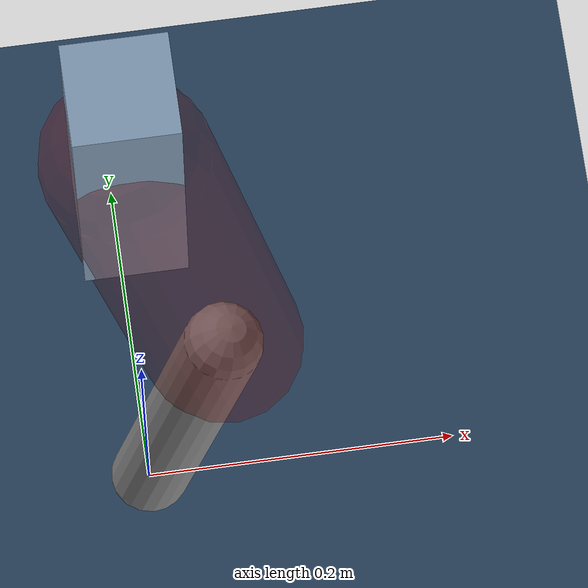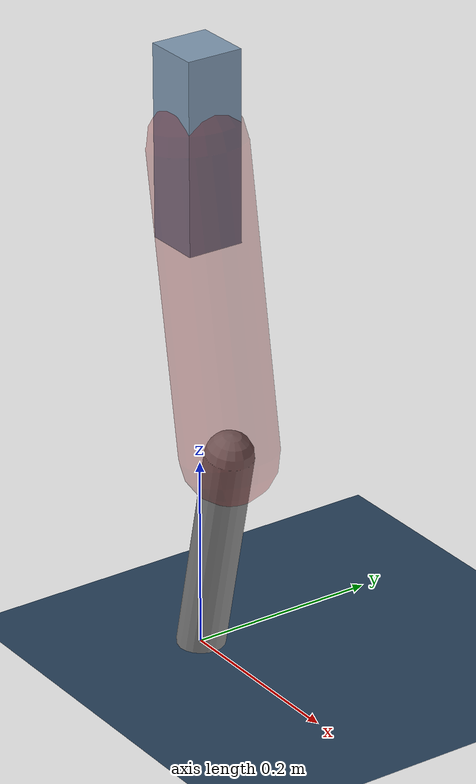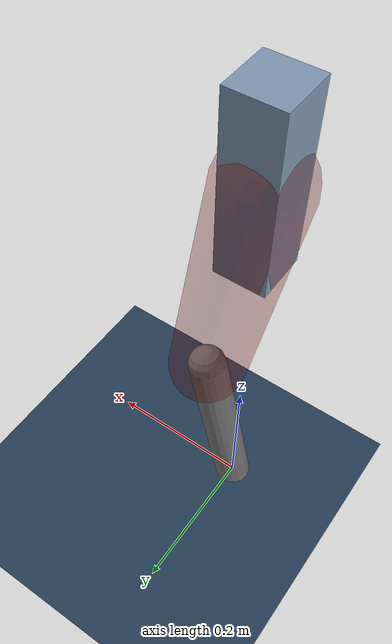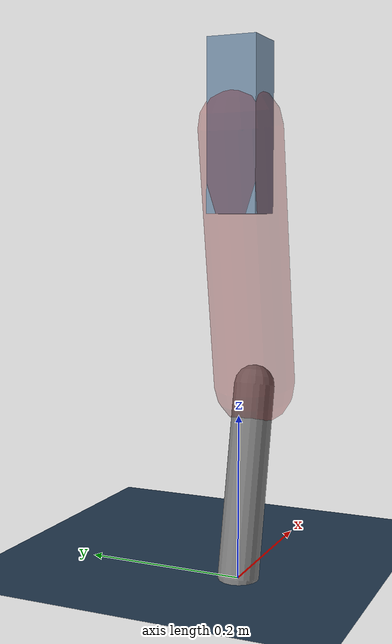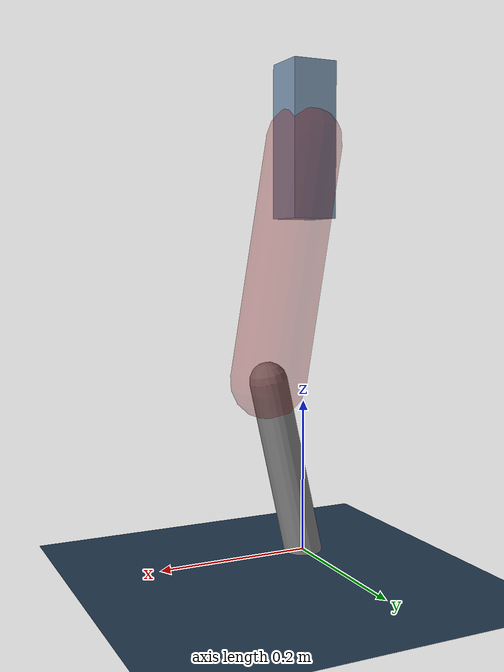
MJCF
<mujoco model="Hopper2D">
	<compiler inertiafromgeom="true" angle="radian" />
	<option timestep="0.001" integrator="implicit" cone="elliptic" solver="Newton" tolerance="1e-10" />

	<default>
		<geom contype="1" conaffinity="1" condim="3" friction="2 0.005 0.0001" solref="0.005 1" />
		<joint limited="true" damping="0.1" />
	</default>

	<asset>
		<texture name="skybox" type="skybox" builtin="gradient" rgb1=".4 .6 .8" rgb2="0 0 0" width="800" height="800" />
		<texture name="grid" type="2d" builtin="checker" rgb1=".1 .2 .3" rgb2=".2 .3 .4" width="300" height="300" mark="edge" markrgb=".2 .3 .4" />
		<material name="ground" texture="grid" texrepeat="1 1" texuniform="true" reflectance="0.1" />
		<material name="leg" rgba="0.5 0.6 0.7 1" />
	</asset>

	<worldbody>

		<geom name="floor" type="plane" size="5 5 0.25" material="ground" />

		<light directional="false" diffuse="0.8 0.8 0.8" specular="0.3 0.3 0.3" pos="0 0 2" dir="0 0 -1" />
		<light mode="targetbodycom" target="base" directional="false" diffuse="0.8 0.8 0.8" specular="0.3 0.3 0.3" pos="0 0 2" dir="0 0 -1" />

		<camera name="fixed" pos="0 -2 1" xyaxes="1 0 0 0 0 1" />
		<camera name="tracking" mode="trackcom" pos="0 -3 1" />

		<body name="root" pos="0 0 0.5400950247047807">
			<joint name="slide_x" type="slide" axis="1 0 0" range="-100 100" />
			<joint name="slide_z" type="slide" axis="0 0 1" range="0 10" />

			<body name="base" pos="0 0 0">
				<geom name="torso" type="box" size="0.03 0.03 0.1" mass="1.7349999999999999" material="leg" />

				<body name="link1" pos="0 0 0" euler="0 1.4058075420955052 0">
					<joint type="hinge" axis="0 -1 0" pos="0 0 0" name="hinge1" limited="true" range="-3.14 3.14" stiffness="0" damping="0.1" />
					<geom name="thigh" type="capsule" fromto="0 0 0 0.314458841307792 0 0" size="0.05" rgba="0.5 0 0 0.3" mass="1.0280388715310385" />

					<body name="link2" pos="0.314458841307792 0 0" euler="0 0.385964393597604 0">
						<joint type="hinge" axis="0 -1 0" pos="0 0 0" name="hinge2" limited="true" range="-3.14 3.14" stiffness="0" damping="0.1" />
						<geom name="shank" type="capsule" fromto="0 0 0 0.23563618339698866 0 0" size="0.025" mass="0.4306725650572898" />

					</body>
				</body>
			</body>
		</body>
	</worldbody>

	<actuator>
		<motor name="torque1" joint="hinge1" ctrlrange="-54.30027849618889 54.30027849618889" ctrllimited="true" gear="1" />
		<motor name="torque2" joint="hinge2" ctrlrange="-68.81648983426285 68.81648983426285" ctrllimited="true" gear="1" />
	</actuator>
</mujoco>
